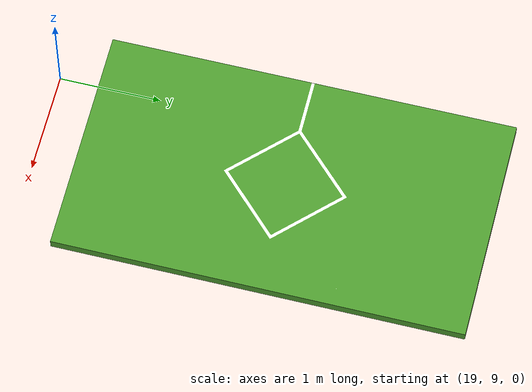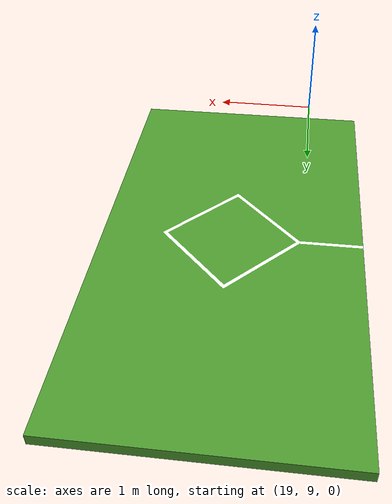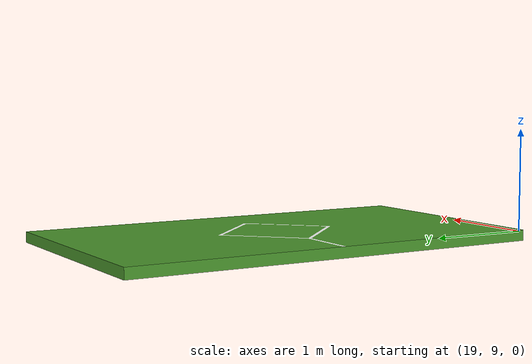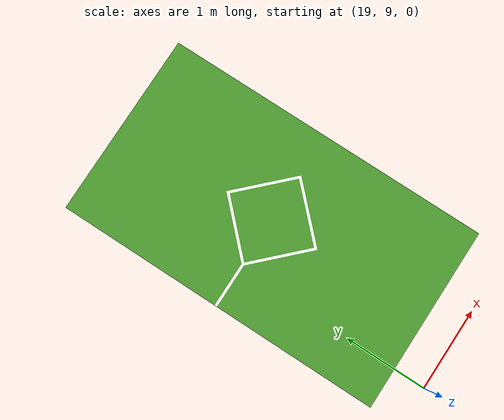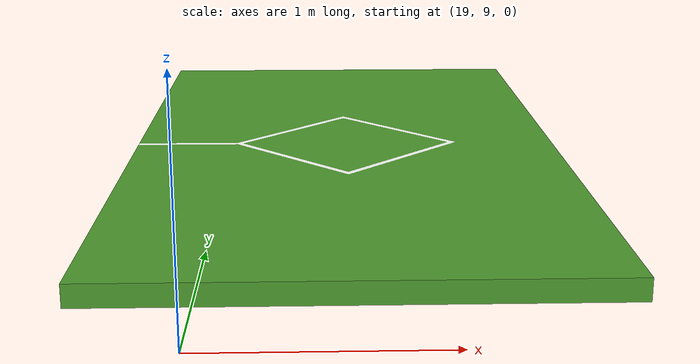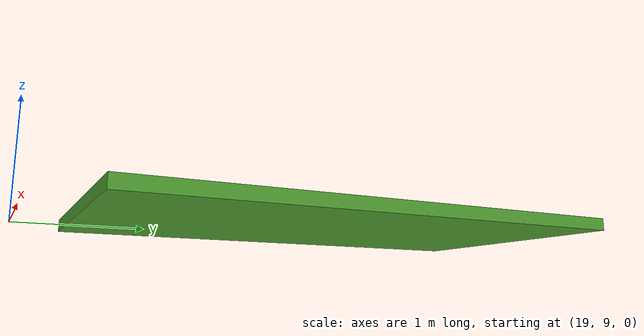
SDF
<?xml version="1.0"?>
<sdf version="1.6">
  <model name="abu2024_300">
      <pose>0 0 0  0 0 0</pose>
      <static>true</static>
      <link name="body">
        <visual name="visual">
          <geometry>
            <mesh><uri>model://abu2024_300/meshes/300.dae</uri></mesh>
          </geometry>
        </visual>
        <collision name="collision">
          <geometry>
            <mesh><uri>model://abu2024_300/meshes/300.dae</uri></mesh>
          </geometry>
        </collision>
      </link>
 </model>
</sdf>
